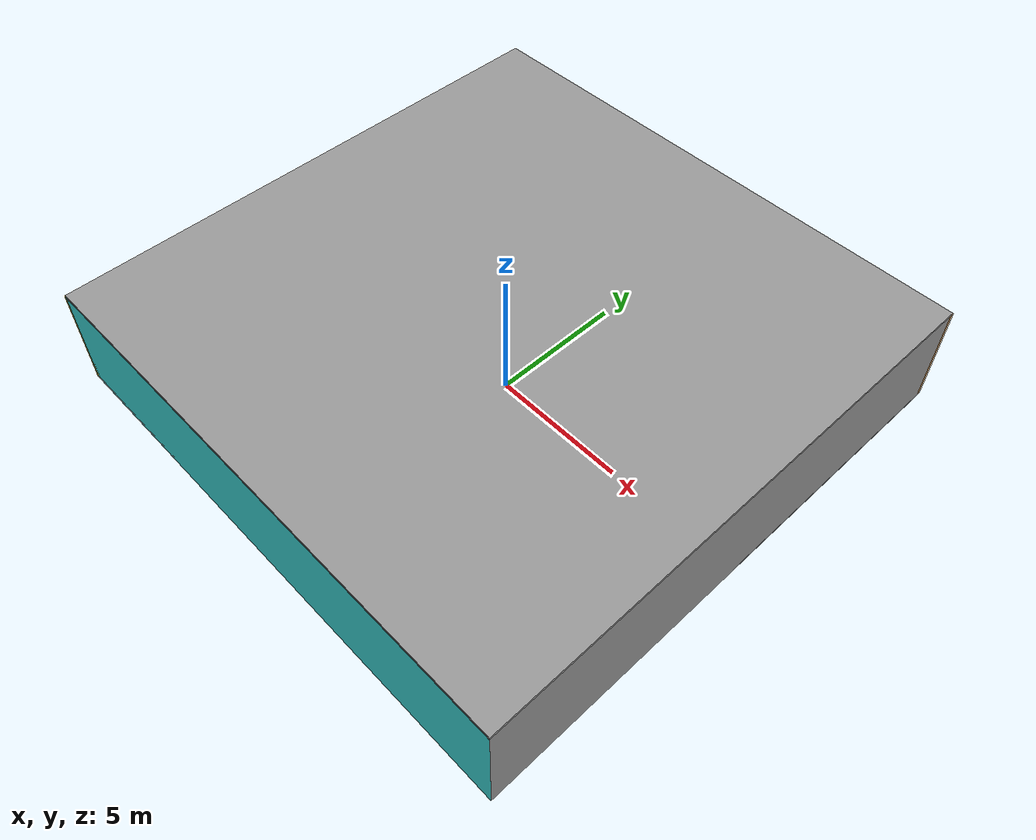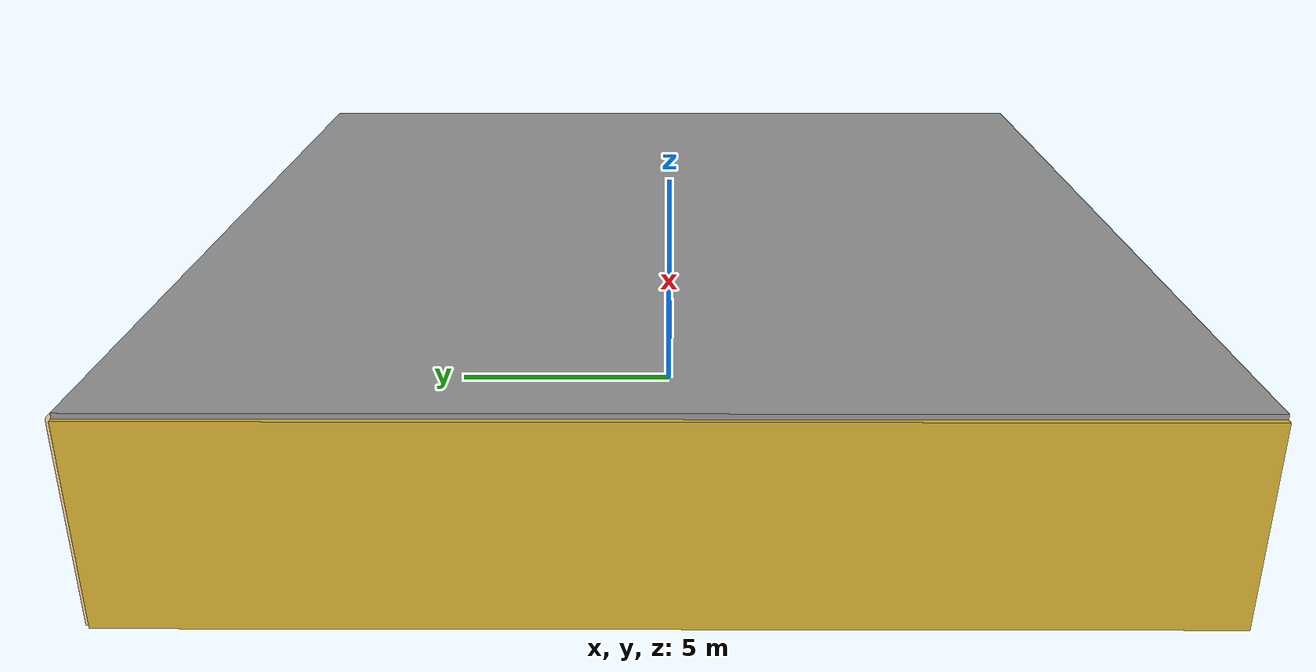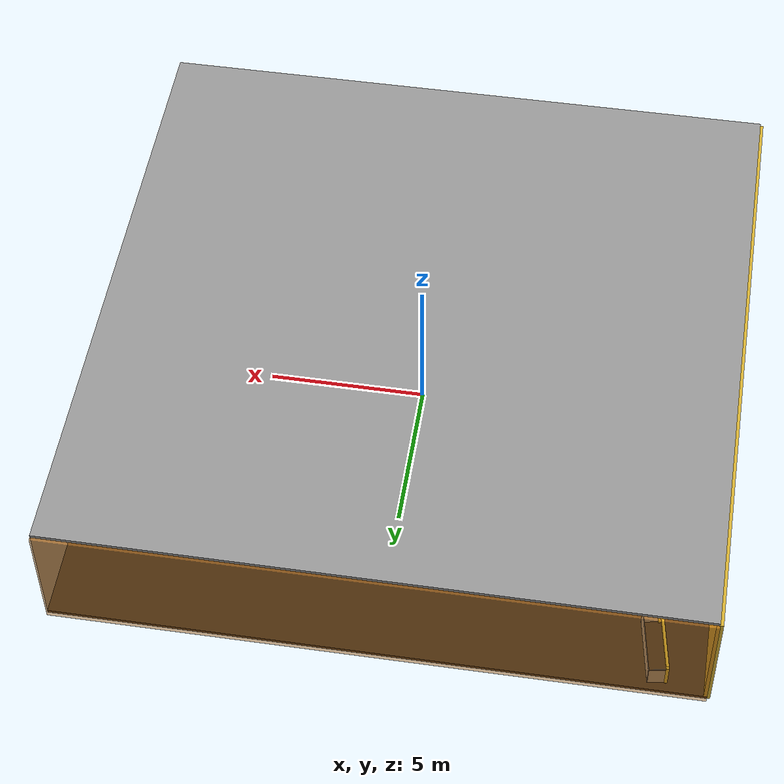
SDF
<sdf version="1.4">
 <world name="default">
  <physics type="ode">
   <max_step_size>0.001</max_step_size>
   <real_time_factor>1</real_time_factor>
   <real_time_update_rate>1000</real_time_update_rate>
   <gravity>0 0 -9.8</gravity>
  </physics>
  <scene><ambient>0.4 0.4 0.4 1</ambient><background>0.7 0.7 0.7 1</background><shadows>1</shadows></scene>
  <model name="Surrounding">
   <static>1</static>
   <link name="Ceiling">
    <collision name="Ceiling_Collision"><geometry><box><size>20 20 0.1</size></box></geometry></collision>
    <visual name="Ceiling_Visual">
     <geometry><box><size>20 20 0.1</size></box></geometry>
     <material>
      <script><uri>file://media/materials/scripts/gazebo.material</uri><name>Gazebo/Grey</name></script>
     </material>
    </visual>
    <pose>0 0 4.05 0 0 0</pose>
   </link>
   <link name="Wall_South">
    <collision name="Wall_South_Collision">
     <geometry><box><size>20 0 4</size></box></geometry>
     <pose>0 0 2 0 -0 0</pose>
    </collision>
    <visual name="Wall_South_Visual">
     <pose>0 0 2 0 -0 0</pose>
     <geometry><box><size>20 0 4</size></box></geometry>
     <material>
      <script><uri>file://media/materials/scripts/gazebo.material</uri><name>Gazebo/Turquoise</name></script>
     </material>
    </visual>
    <velocity_decay><linear>0</linear><angular>0</angular></velocity_decay>
    <pose>0 -10 0 0 -0 0</pose>
   </link>
   <link name="Wall_East">
    <collision name="Wall_21_Collision">
     <geometry><box><size>20 0 4</size></box></geometry>
     <pose>0 0 2 0 -0 0</pose>
    </collision>
    <visual name="Wall_21_Visual">
     <pose>0 0 2 0 -0 0</pose>
     <geometry><box><size>20 0 4</size></box></geometry>
     <material>
      <script><uri>file://media/materials/scripts/gazebo.material</uri><name>Gazebo/GreyGradientSky</name></script>
     </material>
    </visual>
    <velocity_decay><linear>0</linear><angular>0</angular></velocity_decay>
    <pose>10 0 0 0 -0 1.5708</pose>
   </link>
   <link name="Wall_North">
    <collision name="Wall_22_Collision">
     <geometry><box><size>20 0.2 4</size></box></geometry>
     <pose>0 0 2 0 -0 0</pose>
    </collision>
    <visual name="Wall_22_Visual">
     <pose>0 0 2 0 -0 0</pose>
     <geometry><box><size>20 0.2 4</size></box></geometry>
     <material>
      <script>
       <uri>file://media/materials/scripts/gazebo.material</uri>
       <name>Gazebo/OrangeTransparent</name>
      </script>
     </material>
    </visual>
    <velocity_decay><linear>0</linear><angular>0</angular></velocity_decay>
    <pose>0 10 0 0 -0 0</pose>
   </link>
   <link name="Wall_West">
    <collision name="Wall_23_Collision">
     <geometry><box><size>20 0.2 4</size></box></geometry>
     <pose>0 0 2 0 -0 0</pose>
    </collision>
    <visual name="Wall_23_Visual">
     <pose>0 0 2 0 -0 0</pose>
     <geometry><box><size>20 0.2 4</size></box></geometry>
     <material>
      <script><uri>file://media/materials/scripts/gazebo.material</uri><name>Gazebo/Gold</name></script>
     </material>
    </visual>
    <velocity_decay><linear>0</linear><angular>0</angular></velocity_decay>
    <pose>-10 0 0 0 0 -1.5708</pose>
   </link>
   <link name="Ground_link">
    <collision name="collision">
     <pose>0 0 .05 0 -0 0</pose>
     <geometry><box><size>20 20 0.1</size></box></geometry>
    </collision>
    <visual name="visual">
     <pose>0 0 .05 0 -0 0</pose>
     <geometry><box><size>20 20 0.1</size></box></geometry>
     <material>
      <script><uri>file://media/materials/scripts/gazebo.material</uri><name>Gazebo/FlatBlack</name></script>
     </material>
    </visual>
   </link>
   <static>1</static>
  </model>
  <spherical_coordinates>
   <surface_model>EARTH_WGS84</surface_model>
   <latitude_deg>0</latitude_deg>
   <longitude_deg>0</longitude_deg>
   <elevation>0</elevation>
   <heading_deg>0</heading_deg>
  </spherical_coordinates>
  <light name="lightball_0" type="diffuse">
   <diffuse>0.8 0.8 0.8 1</diffuse>
   <specular>0.2 0.2 0.2 1</specular>
   <attenuation>
    <range>100</range>
    <constant>0.7</constant>
    <linear>0.01</linear>
    <quadratic>0.001</quadratic>
   </attenuation>
   <direction>-0.5 0.1 -0.9</direction>
   <pose>-5.94092102951 -0.799510204356 1.20078529467 0 0 0</pose>
  </light>
  <light name="lightball_1" type="diffuse">
   <diffuse>0.8 0.8 0.8 1</diffuse>
   <specular>0.2 0.2 0.2 1</specular>
   <attenuation>
    <range>100</range>
    <constant>0.7</constant>
    <linear>0.01</linear>
    <quadratic>0.001</quadratic>
   </attenuation>
   <direction>-0.5 0.1 -0.9</direction>
   <pose>-7.12530232429 8.33089931476 1.75176625886 0 0 0</pose>
  </light>
  <light name="lightball_2" type="diffuse">
   <diffuse>0.8 0.8 0.8 1</diffuse>
   <specular>0.2 0.2 0.2 1</specular>
   <attenuation>
    <range>100</range>
    <constant>0.7</constant>
    <linear>0.01</linear>
    <quadratic>0.001</quadratic>
   </attenuation>
   <direction>-0.5 0.1 -0.9</direction>
   <pose>4.18633984226 0.33464463512 1.16267796405 0 0 0</pose>
  </light>
  <light name="lightball_3" type="diffuse">
   <diffuse>0.8 0.8 0.8 1</diffuse>
   <specular>0.2 0.2 0.2 1</specular>
   <attenuation>
    <range>100</range>
    <constant>0.7</constant>
    <linear>0.01</linear>
    <quadratic>0.001</quadratic>
   </attenuation>
   <direction>-0.5 0.1 -0.9</direction>
   <pose>-4.60914178802 4.07802659718 2.88992961249 0 0 0</pose>
  </light>
  <light name="lightball_4" type="diffuse">
   <diffuse>0.8 0.8 0.8 1</diffuse>
   <specular>0.2 0.2 0.2 1</specular>
   <attenuation>
    <range>100</range>
    <constant>0.7</constant>
    <linear>0.01</linear>
    <quadratic>0.001</quadratic>
   </attenuation>
   <direction>-0.5 0.1 -0.9</direction>
   <pose>1.6988151107 8.66440808209 2.66544118389 0 0 0</pose>
  </light>
  <include>
   <uri>model://construction_cone</uri>
   <pose>-7.22749597802 -5.20903291324 0 0 0 2.08002501549</pose>
  </include>
  <include>
   <uri>model://robocup_3Dsim_goal</uri>
   <pose>-8.58059438891 8.64313418487 0 0 0 0.168648939284</pose>
  </include>
  <include><uri>model://table</uri><pose>-4.69676410642 -2.11176616982 0 0 0 0.903857908581</pose></include>
  <include><uri>model://table</uri><pose>-0.340453486312 -5.06310404392 0 0 0 2.14326427326</pose></include>
  <include><uri>model://table</uri><pose>-1.78913553178 -0.882910638896 0 0 0 1.17774439711</pose></include>
  <include><uri>model://cabinet</uri><pose>2.0872648419 -8.56799844383 0 0 0 1.07484063377</pose></include>
  <include><uri>model://cabinet</uri><pose>1.31324505686 5.33058378534 0 0 0 2.71190120667</pose></include>
  <include>
   <uri>model://robocup_3Dsim_goal</uri>
   <pose>4.26229209383 0.838894863118 0 0 0 0.27609596555</pose>
  </include>
  <include>
   <uri>model://textured_shapes</uri>
   <pose>5.42930048695 5.30426346047 0 0 0 2.69944238348</pose>
  </include>
  <include>
   <uri>model://robocup_3Dsim_goal</uri>
   <pose>6.71081069622 -2.35333097497 0 0 0 0.634152800149</pose>
  </include>
 </world>
</sdf>

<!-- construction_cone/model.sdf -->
<sdf version="1.5">
  <model name="Construction Cone">
    <link name="link">
      <collision name="collision">
        <geometry>
          <mesh>
            <scale>10 10 10</scale>
            <uri>file://isr-testbed/construction_cone/meshes/construction_cone.dae</uri>
          </mesh>
        </geometry>
      </collision>
      <visual name="visual">
        <geometry>
          <mesh>
            <scale>10 10 10</scale>
            <uri>file://isr-testbed/construction_cone/meshes/construction_cone.dae</uri>
          </mesh>
        </geometry>
      </visual>
    </link>
  </model>
</sdf>

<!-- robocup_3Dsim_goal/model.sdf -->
<sdf version="1.5">
  <model name="robocup_3d_goal">
    <static>true</static>
    <link name="left_post">
      <pose>0 1.05 0.45 0 0 0</pose>
      <collision name="collision">
        <geometry>
          <cylinder>
            <radius>0.05</radius>
            <length>0.9</length>
          </cylinder>
        </geometry>
      </collision>
      <visual name="visual">
        <geometry>
          <cylinder>
            <radius>0.05</radius>
            <length>0.9</length>
          </cylinder>
        </geometry>
        <material>
          <script>
            <uri>file://media/materials/scripts/gazebo.material</uri>
            <name>Gazebo/ZincYellow</name>
          </script>
        </material>
      </visual>
    </link>
    <link name="left_support_horiz_lower">
      <pose>0.30 1.05 0.01 0 0 0</pose>
      <collision name="collision">
        <geometry>
          <box>
            <size>0.50 0.02 0.02</size>
          </box>
        </geometry>
      </collision>
      <visual name="visual">
        <geometry>
          <box>
            <size>0.50 0.02 0.02</size>
          </box>
        </geometry>
        <material>
          <script>
            <uri>file://media/materials/scripts/gazebo.material</uri>
            <name>Gazebo/White</name>
          </script>
        </material>
      </visual>
    </link>
    <link name="left_support_horiz_upper">
      <pose>0.30 1.05 0.79 0 0 0</pose>
      <collision name="collision">
        <geometry>
          <box>
            <size>0.50 0.02 0.02</size>
          </box>
        </geometry>
      </collision>
      <visual name="visual">
        <geometry>
          <box>
            <size>0.50 0.02 0.02</size>
          </box>
        </geometry>
        <material>
          <script>
            <uri>file://media/materials/scripts/gazebo.material</uri>
            <name>Gazebo/White</name>
          </script>
        </material>
      </visual>
    </link>
    <link name="left_support_vertical">
      <pose>0.56 1.05 0.4 0 1.5708 0</pose>
      <collision name="collision">
        <geometry>
          <box>
            <size>0.80 0.02 0.02</size>
          </box>
        </geometry>
      </collision>
      <visual name="visual">
        <geometry>
          <box>
            <size>0.80 0.02 0.02</size>
          </box>
        </geometry>
        <material>
          <script>
            <uri>file://media/materials/scripts/gazebo.material</uri>
            <name>Gazebo/White</name>
          </script>
        </material>
      </visual>
    </link>
    <link name="right_support_horiz_lower">
      <pose>0.30 -1.05 0.01 0 0 0</pose>
      <collision name="collision">
        <geometry>
          <box>
            <size>0.50 0.02 0.02</size>
          </box>
        </geometry>
      </collision>
      <visual name="visual">
        <geometry>
          <box>
            <size>0.50 0.02 0.02</size>
          </box>
        </geometry>
        <material>
          <script>
            <uri>file://media/materials/scripts/gazebo.material</uri>
            <name>Gazebo/White</name>
          </script>
        </material>
      </visual>
    </link>
    <link name="right_support_horiz_upper">
      <pose>0.30 -1.05 0.79 0 0 0</pose>
      <collision name="collision">
        <geometry>
          <box>
            <size>0.50 0.02 0.02</size>
          </box>
        </geometry>
      </collision>
      <visual name="visual">
        <geometry>
          <box>
            <size>0.50 0.02 0.02</size>
          </box>
        </geometry>
        <material>
          <script>
            <uri>file://media/materials/scripts/gazebo.material</uri>
            <name>Gazebo/White</name>
          </script>
        </material>
      </visual>
    </link>
    <link name="right_support_vertical">
      <pose>0.56 -1.05 0.4 0 1.5708 0</pose>
      <collision name="collision">
        <geometry>
          <box>
            <size>0.80 0.02 0.02</size>
          </box>
        </geometry>
      </collision>
      <visual name="visual">
        <geometry>
          <box>
            <size>0.80 0.02 0.02</size>
          </box>
        </geometry>
        <material>
          <script>
            <uri>file://media/materials/scripts/gazebo.material</uri>
            <name>Gazebo/White</name>
          </script>
        </material>
      </visual>
    </link>
    <link name="center_support_horiz_lower">
      <pose>0.56 0 0.01 0 1.5708 0</pose>
      <collision name="collision">
        <geometry>
          <box>
            <size>0.02 2.08 0.02</size>
          </box>
        </geometry>
      </collision>
      <visual name="visual">
        <geometry>
          <box>
            <size>0.02 2.08 0.02</size>
          </box>
        </geometry>
        <material>
          <script>
            <uri>file://media/materials/scripts/gazebo.material</uri>
            <name>Gazebo/White</name>
          </script>
        </material>
      </visual>
    </link>
    <link name="center_support_horiz_upper">
      <pose>0.56 0 0.79 0 1.5708 0</pose>
      <collision name="collision">
        <geometry>
          <box>
            <size>0.02 2.08 0.02</size>
          </box>
        </geometry>
      </collision>
      <visual name="visual">
        <geometry>
          <box>
            <size>0.02 2.08 0.02</size>
          </box>
        </geometry>
        <material>
          <script>
            <uri>file://media/materials/scripts/gazebo.material</uri>
            <name>Gazebo/White</name>
          </script>
        </material>
      </visual>
    </link>
    <link name="right_post">
      <pose>0 -1.05 0.45 0 0 0</pose>
      <collision name="collision">
        <geometry>
          <cylinder>
            <radius>0.05</radius>
            <length>0.9</length>
          </cylinder>
        </geometry>
      </collision>
      <visual name="visual">
        <geometry>
          <cylinder>
            <radius>0.05</radius>
            <length>0.9</length>
          </cylinder>
        </geometry>
        <material>
          <script>
            <uri>file://media/materials/scripts/gazebo.material</uri>
            <name>Gazebo/ZincYellow</name>
          </script>
        </material>
      </visual>
    </link>
    <link name="crossbar">
      <pose>0 0 0.85 1.57 1.57 0</pose>
      <collision name="collision">
        <geometry>
          <cylinder>
            <radius>0.05</radius>
            <length>2.0</length>
          </cylinder>
        </geometry>
      </collision>
      <visual name="visual">
        <geometry>
          <cylinder>
            <radius>0.05</radius>
            <length>2.0</length>
          </cylinder>
        </geometry>
        <material>
          <script>
            <uri>file://media/materials/scripts/gazebo.material</uri>
            <name>Gazebo/ZincYellow</name>
          </script>
        </material>
      </visual>
    </link>
    <link name="center_net">
      <pose>0.56 0 0.40 0 0 0</pose>
      <collision name="collision">
        <geometry>
          <box>
            <size>0.01 2.1 0.80</size>
          </box>
        </geometry>
      </collision>
      <visual name="visual">
        <geometry>
          <box>
            <size>0.01 2.1 0.80</size>
          </box>
        </geometry>
        <material>
          <script>
            <uri>model://../model_source/models/robocup09_spl_field/materials/scripts/</uri>
            <uri>model://../model_source/models/robocup09_spl_field/materials/textures/</uri>
            <name>RoboCup/Net</name>
          </script>
        </material>
      </visual>
    </link>
    <link name="left_net">
      <pose>0.30 1.05 0.40 0 0 0</pose>
      <collision name="collision">
        <geometry>
          <box>
            <size>0.50 0.01 0.76</size>
          </box>
        </geometry>
      </collision>
      <visual name="visual">
        <geometry>
          <box>
            <size>0.50 0.01 0.76</size>
          </box>
        </geometry>
        <material>
          <script>
            <uri>model://../model_source/models/robocup09_spl_field/materials/scripts/</uri>
            <uri>model://../model_source/models/robocup09_spl_field/materials/textures/</uri>
            <name>RoboCup/Net</name>
          </script>
        </material>
      </visual>
    </link>
    <link name="right_net">
      <pose>0.30 -1.05 0.40 0 0 0</pose>
      <collision name="collision">
        <geometry>
          <box>
            <size>0.50 0.01 0.76</size>
          </box>
        </geometry>
      </collision>
      <visual name="visual">
        <geometry>
          <box>
            <size>0.50 0.01 0.76</size>
          </box>
        </geometry>
        <material>
          <script>
            <uri>model://../model_source/models/robocup09_spl_field/materials/scripts/</uri>
            <uri>model://../model_source/models/robocup09_spl_field/materials/textures/</uri>
            <name>RoboCup/Net</name>
          </script>
        </material>
      </visual>
    </link>
  </model>
</sdf>

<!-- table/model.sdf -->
<sdf version="1.5">
  <model name="table">
    <static>true</static>
    <link name="link">
      <collision name="surface">
        <pose>0 0 1.0 0 0 0</pose>
        <geometry>
          <box>
            <size>1.5 0.8 0.03</size>
          </box>
        </geometry>
        <surface>
          <friction>
            <ode>
              <mu>0.6</mu>
              <mu2>0.6</mu2>
            </ode>
          </friction>
        </surface>
      </collision>
      <visual name="visual1">
        <pose>0 0 1.0 0 0 0</pose>
        <geometry>
          <box>
            <size>1.5 0.8 0.03</size>
          </box>
        </geometry>
        <material>
          <script>
            <uri>model://media/materials/scripts/gazebo.material</uri>
            <name>Gazebo/Wood</name>
          </script>
        </material>
      </visual>
      <collision name="front_left_leg">
        <pose>0.68 0.38 0.5 0 0 0</pose>
        <geometry>
          <cylinder>
            <radius>0.02</radius>
            <length>1.0</length>
          </cylinder>
        </geometry>
      </collision>
      <visual name="front_left_leg">
        <pose>0.68 0.38 0.5 0 0 0</pose>
        <geometry>
          <cylinder>
            <radius>0.02</radius>
            <length>1.0</length>
          </cylinder>
        </geometry>
        <material>
          <script>
            <uri>model://media/materials/scripts/gazebo.material</uri>
            <name>Gazebo/Grey</name>
          </script>
        </material>
      </visual>
      <collision name="front_right_leg">
        <pose>0.68 -0.38 0.5 0 0 0</pose>
        <geometry>
          <cylinder>
            <radius>0.02</radius>
            <length>1.0</length>
          </cylinder>
        </geometry>
      </collision>
      <visual name="front_right_leg">
        <pose>0.68 -0.38 0.5 0 0 0</pose>
        <geometry>
          <cylinder>
            <radius>0.02</radius>
            <length>1.0</length>
          </cylinder>
        </geometry>
        <material>
          <script>
            <uri>model://media/materials/scripts/gazebo.material</uri>
            <name>Gazebo/Grey</name>
          </script>
        </material>
      </visual>
      <collision name="back_right_leg">
        <pose>-0.68 -0.38 0.5 0 0 0</pose>
        <geometry>
          <cylinder>
            <radius>0.02</radius>
            <length>1.0</length>
          </cylinder>
        </geometry>
      </collision>
      <visual name="back_right_leg">
        <pose>-0.68 -0.38 0.5 0 0 0</pose>
        <geometry>
          <cylinder>
            <radius>0.02</radius>
            <length>1.0</length>
          </cylinder>
        </geometry>
        <material>
          <script>
            <uri>model://media/materials/scripts/gazebo.material</uri>
            <name>Gazebo/Grey</name>
          </script>
        </material>
      </visual>
      <collision name="back_left_leg">
        <pose>-0.68 0.38 0.5 0 0 0</pose>
        <geometry>
          <cylinder>
            <radius>0.02</radius>
            <length>1.0</length>
          </cylinder>
        </geometry>
      </collision>
      <visual name="back_left_leg">
        <pose>-0.68 0.38 0.5 0 0 0</pose>
        <geometry>
          <cylinder>
            <radius>0.02</radius>
            <length>1.0</length>
          </cylinder>
        </geometry>
        <material>
          <script>
            <uri>model://media/materials/scripts/gazebo.material</uri>
            <name>Gazebo/Grey</name>
          </script>
        </material>
      </visual>
    </link>
  </model>
</sdf>

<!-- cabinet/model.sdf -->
<sdf version="1.5">
  <model name="cabinet">
    <static>true</static>
    <link name="cabinet_bottom_plate">
      <inertial>
        <pose>0 0 -1 0 0 0</pose>
        <inertia>
          <ixx>2.050000</ixx>
          <ixy>0</ixy>
          <ixz>0</ixz>
          <iyy>2.050000</iyy>
          <iyz>0</iyz>
          <izz>2.050000</izz>
        </inertia>
        <mass>25.000000</mass>
      </inertial>
      <collision name="cabinet_bottom_plate_geom">
        <pose>0 0 0.010000 0 0 0</pose>
        <geometry>
          <box>
            <size>0.450000 0.450000 0.020000</size>
          </box>
        </geometry>
      </collision>
      <visual name="cabinet_bottom_plate_geom_visual">
        <pose>0 0 0.010000 0 0 0</pose>
        <geometry>
          <box>
            <size>0.450000 0.450000 0.020000</size>
          </box>
        </geometry>
        <material>
          <script>
            <uri>model://media/materials/scripts/gazebo.material</uri>
            <name>Gazebo/Wood</name>
          </script>
        </material>
      </visual>
      <collision name="cabinet_bottom_plate_geom_cabinet_back_plate">
        <pose>0.235000 0 0.510000 0 0 0</pose>
        <geometry>
          <box>
            <size>0.020000 0.450000 1.020000</size>
          </box>
        </geometry>
      </collision>
      <visual name="cabinet_bottom_plate_geom_cabinet_back_plate_visual">
        <pose>0.235000 0 0.510000 0 0 0</pose>
        <geometry>
          <box>
            <size>0.020000 0.450000 1.020000</size>
          </box>
        </geometry>
        <material>
          <script>
            <uri>model://media/materials/scripts/gazebo.material</uri>
            <name>Gazebo/Wood</name>
          </script>
        </material>
      </visual>
      <collision name="cabinet_bottom_plate_geom_cabinet_left_plate">
        <pose>0 0.235000 0.510000 0 0 0</pose>
        <geometry>
          <box>
            <size>0.450000 0.020000 1.020000</size>
          </box>
        </geometry>
      </collision>
      <visual name="cabinet_bottom_plate_geom_cabinet_left_plate_visual">
        <pose>0 0.235000 0.510000 0 0 0</pose>
        <geometry>
          <box>
            <size>0.450000 0.020000 1.020000</size>
          </box>
        </geometry>
        <material>
          <script>
            <uri>model://media/materials/scripts/gazebo.material</uri>
            <name>Gazebo/Wood</name>
          </script>
        </material>
      </visual>
      <collision name="cabinet_bottom_plate_geom_cabinet_middle_plate">
        <pose>0 0 0.510000 0 0 0</pose>
        <geometry>
          <box>
            <size>0.450000 0.450000 0.020000</size>
          </box>
        </geometry>
      </collision>
      <visual name="cabinet_bottom_plate_geom_cabinet_middle_plate_visual">
        <pose>0 0 0.510000 0 0 0</pose>
        <geometry>
          <box>
            <size>0.450000 0.450000 0.020000</size>
          </box>
        </geometry>
        <material>
          <script>
            <uri>model://media/materials/scripts/gazebo.material</uri>
            <name>Gazebo/Wood</name>
          </script>
        </material>
      </visual>
      <collision name="cabinet_bottom_plate_geom_cabinet_right_plate">
        <pose>0 -0.235000 0.510000 0 0 0</pose>
        <geometry>
          <box>
            <size>0.450000 0.020000 1.020000</size>
          </box>
        </geometry>
      </collision>
      <visual name="cabinet_bottom_plate_geom_cabinet_right_plate_visual">
        <pose>0 -0.235000 0.510000 0 0 0</pose>
        <geometry>
          <box>
            <size>0.450000 0.020000 1.020000</size>
          </box>
        </geometry>
        <material>
          <script>
            <uri>model://media/materials/scripts/gazebo.material</uri>
            <name>Gazebo/Wood</name>
          </script>
        </material>
      </visual>
      <collision name="cabinet_bottom_plate_geom_cabinet_top_plate">
        <pose>0 0 1.010000 0 0 0</pose>
        <geometry>
          <box>
            <size>0.450000 0.450000 0.020000</size>
          </box>
        </geometry>
      </collision>
      <visual name="cabinet_bottom_plate_geom_cabinet_top_plate_visual">
        <pose>0 0 1.010000 0 0 0</pose>
        <geometry>
          <box>
            <size>0.450000 0.450000 0.020000</size>
          </box>
        </geometry>
        <material>
          <script>
            <uri>model://media/materials/scripts/gazebo.material</uri>
            <name>Gazebo/Wood</name>
          </script>
        </material>
      </visual>
    </link>
  </model>
</sdf>

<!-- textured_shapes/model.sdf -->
<sdf version="1.6">
  <model name="textured_shapes">
    <pose>0 0 0.5 0 0 0</pose>
    <link name="box">
      <pose>0 -1.5 0 0 0 0</pose>
      <collision name="collision">
        <geometry>
          <box>
            <size>1 1 1</size>
          </box>
        </geometry>
      </collision>
      <visual name="visual">
        <geometry>
          <box>
            <size>1 1 1</size>
          </box>
        </geometry>
        <material>
          <script>
            <uri>model://../model_source/models/textured_shapes/materials/scripts</uri>
            <uri>model://../model_source/models/textured_shapes/materials/textures</uri>
            <name>TexturedShape/Squares</name>
          </script>
        </material>
      </visual>
    </link>
    <link name="sphere">
      <collision name="collision">
        <geometry>
          <sphere>
            <radius>0.5</radius>
          </sphere>
        </geometry>
      </collision>
      <visual name="visual">
        <geometry>
          <sphere>
            <radius>0.5</radius>
          </sphere>
        </geometry>
        <material>
          <script>
            <uri>model://../model_source/models/textured_shapes/materials/scripts</uri>
            <uri>model://../model_source/models/textured_shapes/materials/textures</uri>
            <name>TexturedShape/Squares</name>
          </script>
        </material>
      </visual>
    </link>
    <link name="cylinder">
      <pose>0 1.5 0 0 0 0</pose>
      <collision name="collision">
        <geometry>
          <cylinder>
            <radius>0.5</radius>
            <length>1</length>
          </cylinder>
        </geometry>
      </collision>
      <visual name="visual">
        <geometry>
          <cylinder>
            <radius>0.5</radius>
            <length>1</length>
          </cylinder>
        </geometry>
        <material>
          <script>
            <uri>model://../model_source/models/textured_shapes/materials/scripts</uri>
            <uri>model://../model_source/models/textured_shapes/materials/textures</uri>
            <name>TexturedShape/Squares</name>
          </script>
        </material>
      </visual>
    </link>
  </model>
</sdf>
